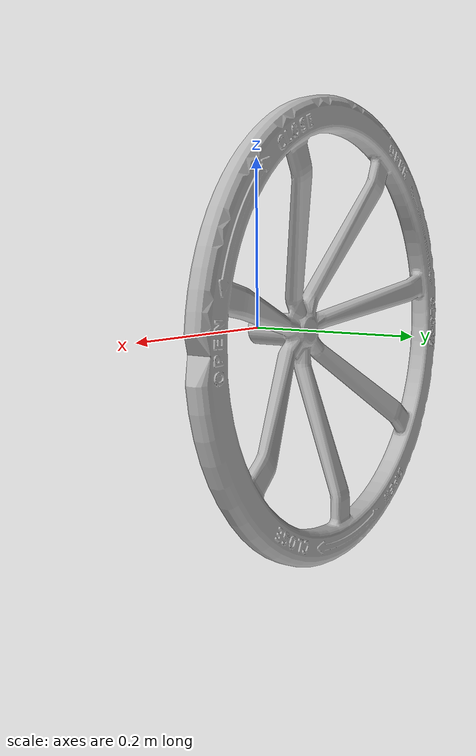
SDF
<?xml version="1.0" ?>
<sdf version="1.5">
  <model name="handwheel_valve">
    <link name="valve">
      <collision name="collision">
        <geometry>
          <mesh>
            <uri>model://valve/meshes/valve.stl</uri>
            <scale>0.001 0.001 0.001</scale>
          </mesh>
        </geometry>
      </collision>
      <visual name="visual">
        <geometry>
          <mesh>
            <uri>model://valve/meshes/valve.stl</uri>
            <scale>0.001 0.001 0.001</scale>
          </mesh>
        </geometry>
      </visual>
    </link>
  </model>
</sdf>
